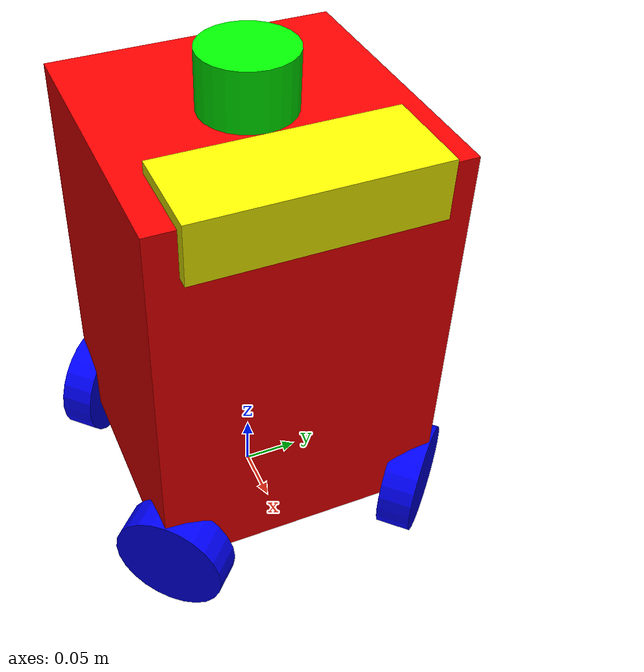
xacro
<?xml version="1.0"?>
<robot name="simple_robot" xmlns:xacro="http://www.ros.org/wiki/xacro">

        <xacro:arg name="use_sim" default="false" />

        <!-- Chargement des propriétés Gazebo si on est en simu -->

        <xacro:if value="$(arg use_sim)">
                <xacro:include filename="$(find pcb_bringup)/urdf/gazebo.xacro"/>
        </xacro:if>

        <!-- ================= PARAMETERS ================= -->

        <!-- Base (reprend ton gros robot) -->
        <xacro:property name="base_length" value="0.25"/>
        <xacro:property name="base_width" value="0.25"/>
        <xacro:property name="base_height" value="0.35"/>

        <!-- Roues (reprend ton modèle initial) -->
        <xacro:property name="wheel_radius" value="0.05"/>
        <xacro:property name="wheel_width"  value="0.03"/>

        <!-- Position roues (CORRIGÉE) -->
        <xacro:property name="wheel_offset_x" value="${base_length/2 - 0.01}"/>
        <xacro:property name="wheel_offset_y" value="${base_width/2 - 0.01}"/>

        <!-- Hauteur base -->
        <xacro:property name="base_z" value="${wheel_radius + base_height/2}"/>

        <link name="base_footprint"/>

        <!-- ================= MATERIALS ================= -->

        <material name="blue">
                <color rgba="0 0 1 1"/>
        </material>
        <material name="red">
                <color rgba="1 0 0 1"/>
        </material>
        <material name="green">
                <color rgba="0 1 0 1"/>
        </material>
        <material name="yellow">
                <color rgba="1 1 0 1"/>
        </material>
        <material name="magenta">
                <color rgba="1 0 1 1"/>
        </material>
        <material name="cyan">
                <color rgba="0 1 1 1"/>
        </material>
        <material name="white">
                <color rgba="1 1 1 1"/>
        </material>

        <!-- ================= BASE ================= -->

        <link name="base_link">
                <visual>
                        <geometry>
                                <box size="${base_length} ${base_width} ${base_height}"/>
                        </geometry>
                        <material name="red"/>
                </visual>

                <collision>
                        <geometry>
                                <box size="${base_length} ${base_width} ${base_height}"/>
                        </geometry>
                </collision>

                <inertial>
                        <mass value="10"/>
                        <inertia ixx="0.15" iyy="0.15" izz="0.1" ixy="0" ixz="0" iyz="0"/>
                </inertial>
        </link>

        <joint name="base_joint" type="fixed">
                <parent link="base_footprint"/>
                <child link="base_link"/>
                <origin xyz="0 0 ${base_z}"/>
        </joint>

        <!-- ================= FRONT VISUAL ================= -->

        <link name="front_visual">
                <visual>
                        <geometry>
                                <box size="0.08 0.20 0.05"/>
                        </geometry>
                        <material name="yellow"/>
                </visual>
        </link>

        <joint name="front_visual_joint" type="fixed">
                <parent link="base_link"/>
                <child link="front_visual"/>
                <origin xyz="${base_length/2 - 0.03} 0 ${base_height/2 - 0.015}"/>
        </joint>

        <!-- ================= MACRO ROUE ================= -->

        <xacro:macro name="wheel" params="name x y angle axis_y">
                <link name="${name}_link">
                        <visual>
                                <geometry>
                                        <cylinder radius="${wheel_radius}" length="${wheel_width}"/>
                                </geometry>
                                <origin rpy="${pi/2} 0 0"/>
                                <material name="blue"/>
                        </visual>

                        <collision>
                                <geometry>
                                        <cylinder radius="${wheel_radius}" length="${wheel_width}"/>
                                </geometry>
                                <origin rpy="${pi/2} 0 0"/>
                        </collision>

                        <inertial>
                                <mass value="0.15"/>
                                <inertia ixx="0.01" iyy="0.01" izz="0.01" ixy="0" ixz="0" iyz="0"/>
                        </inertial>
                </link>

                <joint name="${name}_joint" type="continuous">
                        <parent link="base_link"/>
                        <child link="${name}_link"/>
                        <origin xyz="${x} ${y} ${-base_height/2}" rpy="0 0 ${angle}"/>
                        <axis xyz="0 ${axis_y} 0"/>
                </joint>
        </xacro:macro>

        <!-- ================= WHEELS ================= -->

        <!-- position EXACTE au bord (plus dans le cube) -->
        <xacro:wheel name="rf" x="${wheel_offset_x}" y="${-wheel_offset_y}" angle="${pi/4}" axis_y="-1"/>
        <xacro:wheel name="rb" x="${-wheel_offset_x}" y="${-wheel_offset_y}" angle="${-pi/4}" axis_y="-1"/>
        <xacro:wheel name="lf" x="${wheel_offset_x}" y="${wheel_offset_y}" angle="${-pi/4}" axis_y="1"/>
        <xacro:wheel name="lb" x="${-wheel_offset_x}" y="${wheel_offset_y}" angle="${pi/4}" axis_y="1"/>

        <!-- ================= LIDAR ================= -->

        <link name="lidar_link">
                <visual>
                        <geometry>
                                <cylinder length="0.05" radius="0.04"/>
                        </geometry>
                        <material name="green"/>
                </visual>
        </link>

        <joint name="lidar_joint" type="fixed">
                <parent link="base_link"/>
                <child link="lidar_link"/>
                <!-- posé sur la base -->
                <origin xyz="0 0 ${base_height/2 + 0.05/2}"/>
        </joint>

        <!-- ================= ROS2 CONTROL ================= -->

        <ros2_control name="RobotController" type="system">
                <hardware>
                        <xacro:if value="$(arg use_sim)">
                                <plugin>gz_ros2_control/GazeboSimSystem</plugin>
                        </xacro:if>

                        <xacro:unless value="$(arg use_sim)">
                                <plugin>micro_ros_hardware/MicroRosHardwareInterface</plugin>
                                <!-- Les paramètres optionnels lus par ton on_init() -->
                                <param name="cmd_topic">/wheel_commands</param>
                                <param name="state_topic">/micro_controller/joint_states</param>
                        </xacro:unless>
                </hardware>

                <joint name="lf_joint">
                        <command_interface name="velocity"/>
                        <state_interface name="position"/>
                        <state_interface name="velocity"/>
                </joint>

                <joint name="rf_joint">
                        <command_interface name="velocity"/>
                        <state_interface name="position"/>
                        <state_interface name="velocity"/>
                </joint>

                <joint name="rb_joint">
                        <command_interface name="velocity"/>
                        <state_interface name="position"/>
                        <state_interface name="velocity"/>
                </joint>

                <joint name="lb_joint">
                        <command_interface name="velocity"/>
                        <state_interface name="position"/>
                        <state_interface name="velocity"/>
                </joint>

        </ros2_control>

        <xacro:if value="$(arg use_sim)">
                <gazebo>
                        <plugin filename="gz_ros2_control-system" name="gz_ros2_control::GazeboSimROS2ControlPlugin">
                                <parameters>$(find pcb_bringup)/config/sim/robot_controller.yaml</parameters>
                        </plugin>
                </gazebo>
        </xacro:if>

</robot>
